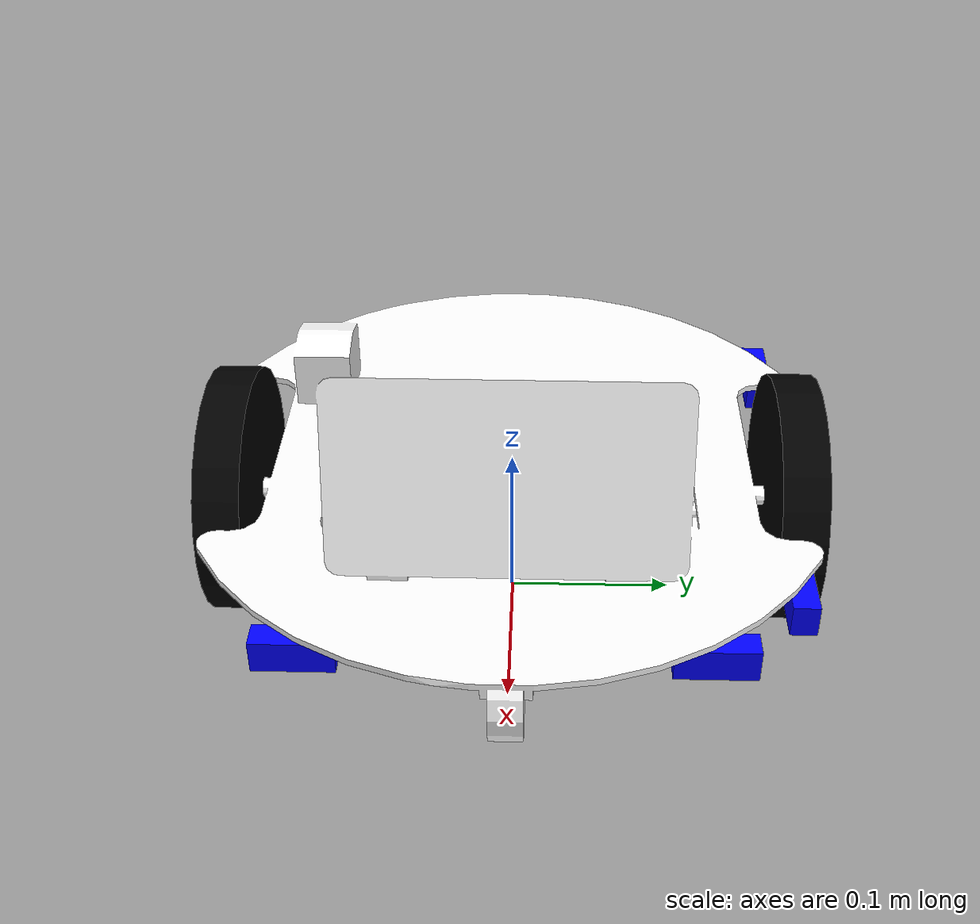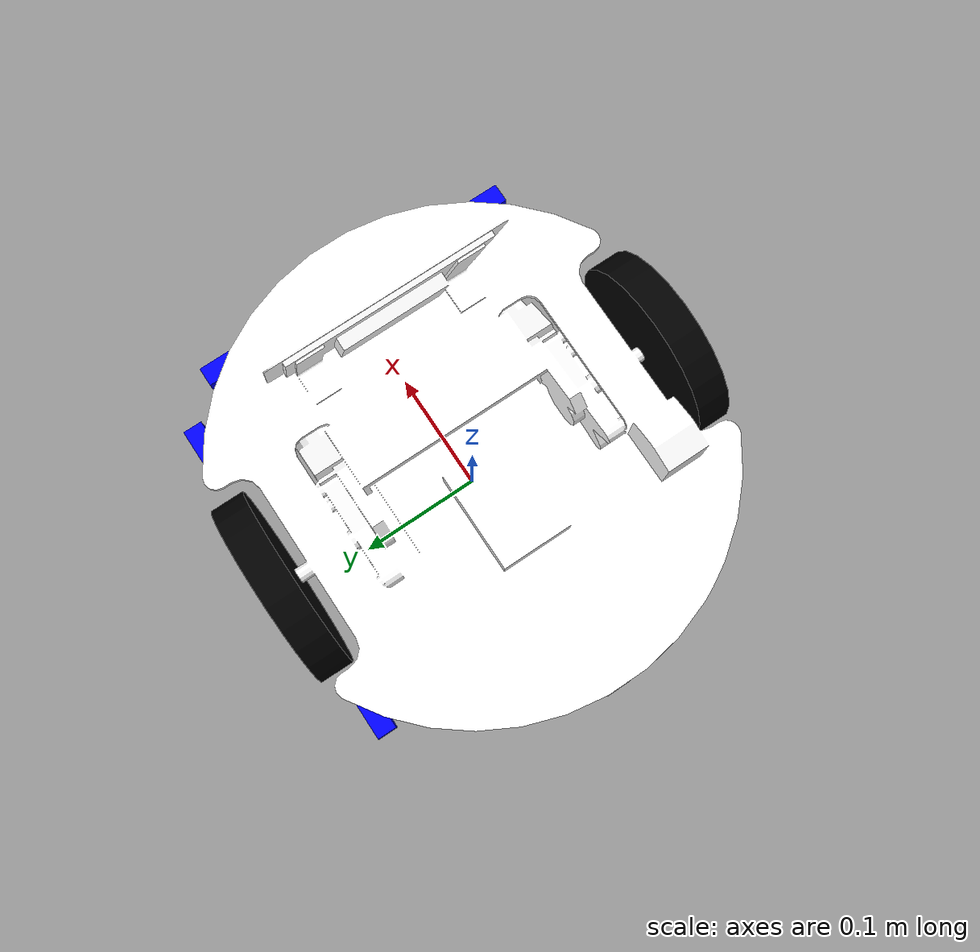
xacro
<?xml version="1.0"?>
<robot xmlns:xacro="http://www.ros.org/wiki/xacro" name="imrt_robot">

<xacro:arg name="robot_namespace" default="" />
<xacro:property name="wheel_radius" value="0.075" />
<xacro:property name="wheel_thicknes" value="0.027" />
<xacro:property name="wheel_offset" value="0.168" />
<xacro:property name="base_link_collision_height" value="0.225" />
<xacro:property name="base_link_collision_height_half" value="0.1125" />
<xacro:property name="base_link_collision_radius" value="0.1975" />
<xacro:property name="base_inertya_Ixy" value="0.04650625" />
<xacro:property name="base_inertya_Iz" value="0.0780125" />
<xacro:property name="base_inertya_Mass" value="4" />
<xacro:property name="wheel_inertya_Mass" value="0.5" />
<xacro:property name="wheel_inertya_Ixy" value="0.0007335" />
<xacro:property name="wheel_inertya_Iz" value="0.00140625" />

<xacro:include filename="$(find imrt_description)/urdf/range_sensor.urdf.xacro" />
<xacro:add_range_sensor sensor_name="rangesens_1" sensor_xyz="0.16 -0.11 0.091" sensor_rpy="0.0 0.0 0.0"/>
<xacro:add_range_sensor sensor_name="rangesens_2" sensor_xyz="0.16 0.11 0.091" sensor_rpy="0.0 0.0 0.0"/>
<xacro:add_range_sensor sensor_name="rangesens_3" sensor_xyz="0.11 0.16 0.091" sensor_rpy="0.0 0.0 ${pi/2}"/>
<xacro:add_range_sensor sensor_name="rangesens_4" sensor_xyz="-0.11 0.16 0.091" sensor_rpy="0.0 0.0 ${pi/2}"/>

<material name="white" >
<color rgba="1 1 1 1" />
</material>

<material name="black" >
<color rgba="0 0 0 1" />
</material>

<gazebo>
 <plugin name="gazebo_ros_control" filename="libgazebo_ros_control.so">
  <robotNamespace>$(arg robot_namespace)</robotNamespace>
 </plugin>
</gazebo>

<link name="base_link">
<visual>
    <origin rpy="0 0 0" xyz="0 0 ${wheel_radius}"/>
    <geometry>
    <mesh filename="package://imrt_description/meshes/imrt_base_mesh.dae"/>
    </geometry>
    <material name="white"/>
</visual>
<collision>
    <geometry>
    <cylinder radius="${base_link_collision_radius}" length="${base_link_collision_height}"/>
    </geometry>
    <origin xyz="0 0 ${base_link_collision_height_half}" rpy="0 0 0"/>
</collision>
</link>

<link name="inertial_link">
<inertial>
    <mass value="${base_inertya_Mass}" />
    <origin xyz="0 0 ${wheel_radius}" rpy="0 0 0" />
    <inertia ixx="${base_inertya_Ixy}" ixy="0" ixz="0" iyy="${base_inertya_Ixy}" iyz="0" izz="${base_inertya_Iz}" />
</inertial>
</link>

<joint name="base_inertia" type="fixed">
    <origin xyz="0 0 0" rpy="0 0 0" />
    <parent link="base_link" />
    <child link="inertial_link" />
</joint>

<gazebo reference="base_link">
 <mu1 value="0.0" />
 <mu2 value="0.0" />
 <kp value="1000000.0" />
 <kd value="1.0" />
</gazebo>

<link name="left_wheel_link">
<visual>
    <origin rpy="${pi/2} 0 0" xyz="0 0 0"/>
    <geometry>
    <cylinder radius="${wheel_radius}" length="${wheel_thicknes}"/>
    </geometry>
    <material name="black"/>
</visual>
<collision>
    <geometry>
    <cylinder radius="${wheel_radius}" length="${wheel_thicknes}"/>
    </geometry>
    <origin rpy="${pi/2} 0 0" xyz="0 0 0"/>
</collision>
<inertial>
    <origin xyz="0 0 0" rpy="${pi/2} 0 0" />
    <mass value="${wheel_inertya_Mass}" />
    <inertia ixx="${wheel_inertya_Ixy}" ixy="0" ixz="0" iyy="${wheel_inertya_Ixy}" iyz="0" izz="${wheel_inertya_Iz}" />
</inertial>
</link>

<gazebo reference="left_wheel_link">
 <mu1 value="1.0" />
 <mu2 value="1.0" />
 <kp value="1000000.0" />
 <kd value="1.0" />
 <material value="Gazebo/Black"/>
</gazebo>

<joint name="left_wheel_joint" type="continuous">
 <parent link="base_link" />
  <child link="left_wheel_link" />
  <axis xyz="0 1 0" />
 <origin rpy="0 0 0" xyz="0 ${wheel_offset} ${wheel_radius}"/>
</joint>

<transmission name="simple_trans1">
  <type>transmission_interface/SimpleTransmission</type>
  <joint name="left_wheel_joint">
    <hardwareInterface>hardware_interface/VelocityJointInterface</hardwareInterface>
  </joint>
  <actuator name="left_wheel_joint">
    <mechanicalReduction>1</mechanicalReduction>
    <hardwareInterface>hardware_interface/VelocityJointInterface</hardwareInterface>
  </actuator>
</transmission>

<link name="right_wheel_link">
<visual>
    <origin rpy="${pi/2} 0 0" xyz="0 0 0"/>
    <geometry>
    <cylinder radius="${wheel_radius}" length="${wheel_thicknes}"/>
    </geometry>
    <material name="black"/>
</visual>
<collision>
    <geometry>
    <cylinder radius="${wheel_radius}" length="${wheel_thicknes}"/>
    </geometry>
    <origin rpy="${pi/2} 0 0" xyz="0 0 0"/>
</collision>
<inertial>
    <origin xyz="0 0 0" rpy="${pi/2} 0 0" />
    <mass value="${wheel_inertya_Mass}" />
    <inertia ixx="${wheel_inertya_Ixy}" ixy="0" ixz="0" iyy="${wheel_inertya_Ixy}" iyz="0" izz="${wheel_inertya_Iz}" />
</inertial>
</link>

<gazebo reference="right_wheel_link">
 <mu1 value="1.0" />
 <mu2 value="1.0" />
 <kp value="1000000.0" />
 <kd value="1.0" />
 <material value="Gazebo/Black"/>
</gazebo>

<joint name="right_wheel_joint" type="continuous">
 <parent link="base_link" />
  <child link="right_wheel_link" />
  <axis xyz="0 1 0" />
 <origin rpy="0 0 0" xyz="0 -${wheel_offset} ${wheel_radius}"/>
</joint>

<transmission name="simple_trans2">
  <type>transmission_interface/SimpleTransmission</type>
  <joint name="right_wheel_joint">
    <hardwareInterface>hardware_interface/VelocityJointInterface</hardwareInterface>
  </joint>
  <actuator name="right_wheel_joint">
    <mechanicalReduction>1</mechanicalReduction>
    <hardwareInterface>hardware_interface/VelocityJointInterface</hardwareInterface>
  </actuator>
</transmission>

</robot>

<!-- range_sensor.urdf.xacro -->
<robot xmlns:xacro="http://www.ros.org/wiki/xacro" name="range_sensor">

<xacro:arg name="robot_namespace" default="/" />

<!-- ADD RANGE SENSOR MACRO -->
  <xacro:macro name="add_range_sensor" params="sensor_name sensor_xyz sensor_rpy">

    <link name="${sensor_name}">
      <visual>
        <geometry>
          <box size="0.015 0.045 0.019" />
        </geometry>
        <origin xyz="0 0 0" rpy="0 0 0" />
        <material name="rangesens_blue">
          <color rgba="0 0 1 1" />
        </material>
      </visual>
    </link>

    <joint name="${sensor_name}_joint" type="fixed">
      <origin xyz="${sensor_xyz}" rpy="${sensor_rpy}" />
      <parent link="base_link" />
      <child link="${sensor_name}" />
    </joint>

    <gazebo reference="${sensor_name}">
      <material>Gazebo/Blue</material>
      <sensor type="ray" name="${sensor_name}">
        <pose>0 0 0 0 0 0</pose>
        <visualize>true</visualize>
        <update_rate>10</update_rate>
        <ray>
           <scan>
              <horizontal>
                 <samples>10</samples>
                 <resolution>1</resolution>
                 <min_angle>-0.03</min_angle>
                 <max_angle>0.03</max_angle>
              </horizontal>
              <vertical>
                 <samples>10</samples>
                 <resolution>1</resolution>
                 <min_angle>-0.03</min_angle>
                 <max_angle>0.03</max_angle>
              </vertical>
           </scan>
           <range>
              <min>0.01</min>
              <max>2.55</max>
              <resolution>0.01</resolution>
           </range>
        </ray>
        <plugin filename="libgazebo_ros_range.so" name="gazebo_ros_range">
           <robotNamespace>$(arg robot_namespace)</robotNamespace>
           <gaussianNoise>0.005</gaussianNoise>
           <alwaysOn>true</alwaysOn>
           <updateRate>10</updateRate>
           <topicName>ranges/${sensor_name}</topicName>
           <frameName>${sensor_name}</frameName>
           <radiation>ULTRASOUND</radiation>
           <fov>0.06</fov>
        </plugin>
      </sensor>
    </gazebo>

  </xacro:macro>

  </robot>
